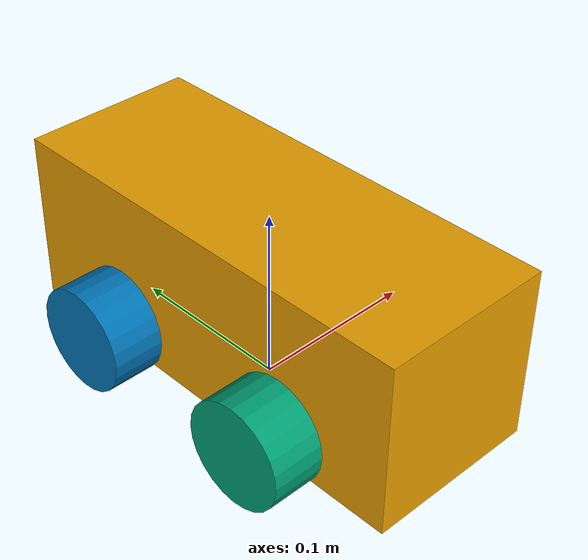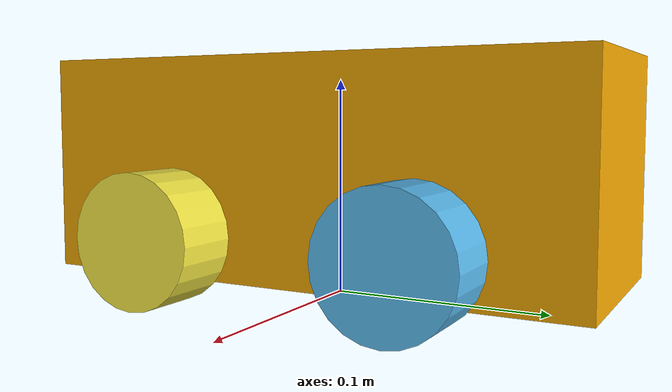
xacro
<?xml version='1.0'?>
<robot xmlns:xacro="http://www.ros.org/wiki/xacro" name="tolya">
  <xacro:include filename="base.xacro" />
  <xacro:include filename="wheel.xacro" />

  <xacro:base/>
  <xacro:wheel parent="base_link" origin_xyz="0.065 0.059 0.03" number="1"/>
  <xacro:wheel parent="base_link" origin_xyz="-0.065 -0.059 0.03" number="2"/>
  <xacro:wheel parent="base_link" origin_xyz="0.065 -0.059 0.03" number="3"/>
  <xacro:wheel parent="base_link" origin_xyz="-0.065 0.059 0.03" number="4"/>
</robot>

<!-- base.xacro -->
<robot xmlns:xacro="http://www.ros.org/wiki/xacro">
    <xacro:macro name="base">
        <link name='base_link'>
        <inertial>
            <mass value="0.05"/>
            <origin xyz="0.0 0 0" rpy=" 0 0 0"/>
            <inertia
                ixx="0.1" ixy="0" ixz="0"
                iyy="0.1" iyz="0"
                izz="0.1"
            />
        </inertial>

        <collision name='base_collision'>
            <origin xyz="0 0 0.06" rpy="0 0 0"/>
            <geometry>
                <box size="0.15 0.257 0.1"/>
            </geometry>
        </collision>

        <visual name='base_visual'>
            <origin xyz="0 0 0.06" rpy="0 0 0"/>
            <geometry>
                <box size="0.1 0.257 0.1"/>
            </geometry>
        </visual>
        </link>
    </xacro:macro>
</robot>

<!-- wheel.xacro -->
<robot xmlns:xacro="http://www.ros.org/wiki/xacro">
    <xacro:macro name="wheel"  params="origin_xyz number parent">
        <link name='wheel_link_${number}'>
        <inertial>
            <mass value="0.05"/>
            <origin xyz="0 0 0" rpy=" 0 0 0"/>
            <inertia
                ixx="0.1" ixy="0" ixz="0"
                iyy="0.1" iyz="0"
                izz="0.1"
            />
        </inertial>

        <collision name='wheel_collision_${number}'>
            <origin xyz="0 0 0" rpy="0 0 0"/>
            <geometry>
                <cylinder radius="0.03" length="0.03"/>
            </geometry>
        </collision>

        <visual name='wheel_visual_${number}'>
            <origin xyz="0 0 0" rpy="0 0 0"/>
            <geometry>
                <cylinder radius="0.03" length="0.03"/>
            </geometry>
        </visual>
        </link>

        <joint name="wheel_joint_${number}" type="continuous">
            <origin rpy="0 ${pi/2} 0" xyz="${origin_xyz}" />
            <parent link="${parent}" />
            <child link="wheel_link_${number}" />
            <axis xyz="1 1 1" />
        </joint>
    </xacro:macro >
</robot>
